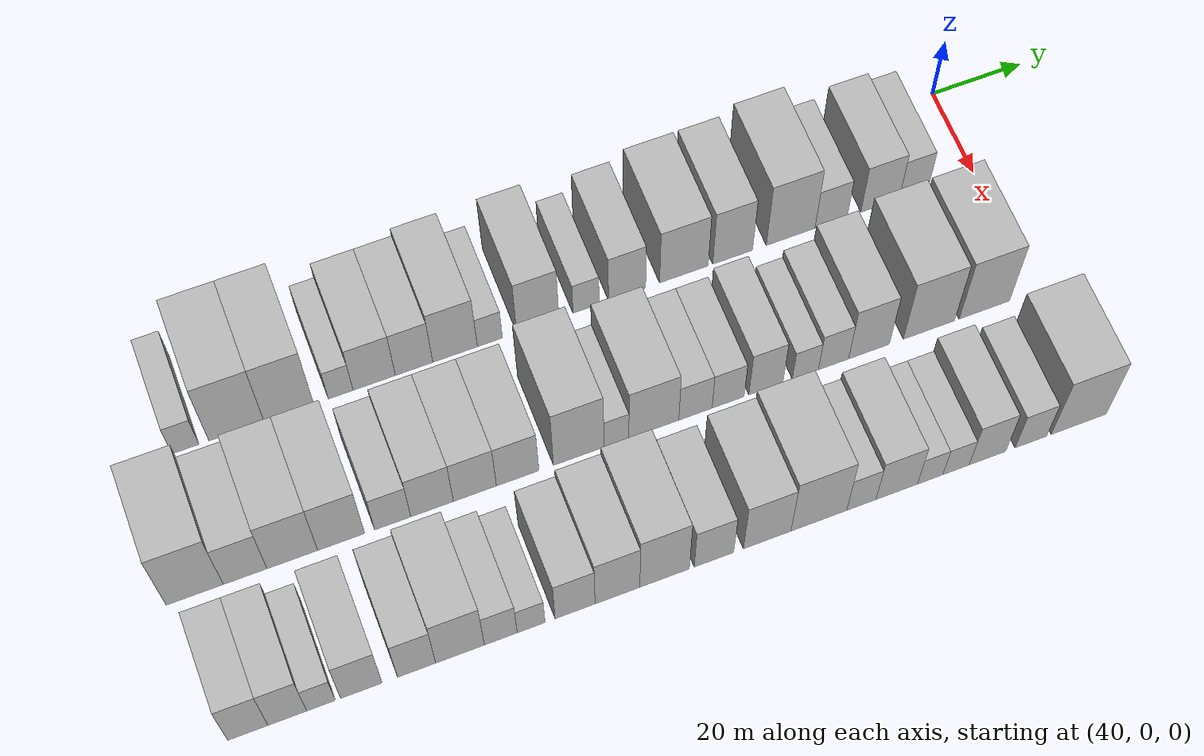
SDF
<sdf version="1.6">
 <world name="default">
  <model name="building_19">
   <static>1</static>
   <pose>50.0000 -167.7257 0 0.000000 0.000000 0.000000</pose>
   <link name="link">
    <pose>0 0 6.00 0 0 0</pose>
    <collision name="collision"><geometry><box><size>20.0000 5.4664 12.0000</size></box></geometry></collision>
    <visual name="visual">
     <cast_shadows>0</cast_shadows>
     <geometry><box><size>20.0000 5.4664 12.0000</size></box></geometry>
     <material>
      <script>
       <uri>model://HANNAS_wall/materials/scripts</uri>
       <uri>model://HANNAS_wall/materials/textures</uri>
       <name>vrc/HANNAS_wall</name>
      </script>
     </material>
    </visual>
   </link>
  </model>
  <model name="building_20">
   <static>1</static>
   <pose>50.0000 -157.3953 0 0.000000 0.000000 0.000000</pose>
   <link name="link">
    <pose>0 0 12.00 0 0 0</pose>
    <collision name="collision"><geometry><box><size>20.0000 11.1945 24.0000</size></box></geometry></collision>
    <visual name="visual">
     <cast_shadows>0</cast_shadows>
     <geometry><box><size>20.0000 11.1945 24.0000</size></box></geometry>
     <material>
      <script>
       <uri>model://HANNAS_wall/materials/scripts</uri>
       <uri>model://HANNAS_wall/materials/textures</uri>
       <name>vrc/HANNAS_wall</name>
      </script>
     </material>
    </visual>
   </link>
  </model>
  <model name="building_21">
   <static>1</static>
   <pose>50.0000 -146.7273 0 0.000000 0.000000 0.000000</pose>
   <link name="link">
    <pose>0 0 12.00 0 0 0</pose>
    <collision name="collision"><geometry><box><size>20.0000 10.1413 24.0000</size></box></geometry></collision>
    <visual name="visual">
     <cast_shadows>0</cast_shadows>
     <geometry><box><size>20.0000 10.1413 24.0000</size></box></geometry>
     <material>
      <script>
       <uri>model://HANNAS_wall/materials/scripts</uri>
       <uri>model://HANNAS_wall/materials/textures</uri>
       <name>vrc/HANNAS_wall</name>
      </script>
     </material>
    </visual>
   </link>
  </model>
  <model name="building_22">
   <static>1</static>
   <pose>50.0000 -136.1086 0 0.000000 0.000000 0.000000</pose>
   <link name="link">
    <pose>0 0 6.00 0 0 0</pose>
    <collision name="collision"><geometry><box><size>20.0000 5.0961 12.0000</size></box></geometry></collision>
    <visual name="visual">
     <cast_shadows>0</cast_shadows>
     <geometry><box><size>20.0000 5.0961 12.0000</size></box></geometry>
     <material>
      <script>
       <uri>model://HANNAS_wall/materials/scripts</uri>
       <uri>model://HANNAS_wall/materials/textures</uri>
       <name>vrc/HANNAS_wall</name>
      </script>
     </material>
    </visual>
   </link>
  </model>
  <model name="building_23">
   <static>1</static>
   <pose>50.0000 -129.1905 0 0.000000 0.000000 0.000000</pose>
   <link name="link">
    <pose>0 0 9.00 0 0 0</pose>
    <collision name="collision"><geometry><box><size>20.0000 8.7401 18.0000</size></box></geometry></collision>
    <visual name="visual">
     <cast_shadows>0</cast_shadows>
     <geometry><box><size>20.0000 8.7401 18.0000</size></box></geometry>
     <material>
      <script>
       <uri>model://HANNAS_wall/materials/scripts</uri>
       <uri>model://HANNAS_wall/materials/textures</uri>
       <name>vrc/HANNAS_wall</name>
      </script>
     </material>
    </visual>
   </link>
  </model>
  <model name="building_24">
   <static>1</static>
   <pose>50.0000 -120.9280 0 0.000000 0.000000 0.000000</pose>
   <link name="link">
    <pose>0 0 9.00 0 0 0</pose>
    <collision name="collision"><geometry><box><size>20.0000 7.7850 18.0000</size></box></geometry></collision>
    <visual name="visual">
     <cast_shadows>0</cast_shadows>
     <geometry><box><size>20.0000 7.7850 18.0000</size></box></geometry>
     <material>
      <script>
       <uri>model://HANNAS_wall/materials/scripts</uri>
       <uri>model://HANNAS_wall/materials/textures</uri>
       <name>vrc/HANNAS_wall</name>
      </script>
     </material>
    </visual>
   </link>
  </model>
  <model name="building_25">
   <static>1</static>
   <pose>50.0000 -112.3726 0 0.000000 0.000000 0.000000</pose>
   <link name="link">
    <pose>0 0 10.50 0 0 0</pose>
    <collision name="collision"><geometry><box><size>20.0000 9.3259 21.0000</size></box></geometry></collision>
    <visual name="visual">
     <cast_shadows>0</cast_shadows>
     <geometry><box><size>20.0000 9.3259 21.0000</size></box></geometry>
     <material>
      <script>
       <uri>model://HANNAS_wall/materials/scripts</uri>
       <uri>model://HANNAS_wall/materials/textures</uri>
       <name>vrc/HANNAS_wall</name>
      </script>
     </material>
    </visual>
   </link>
  </model>
  <model name="building_26">
   <static>1</static>
   <pose>50.0000 -105.0843 0 0.000000 0.000000 0.000000</pose>
   <link name="link">
    <pose>0 0 6.00 0 0 0</pose>
    <collision name="collision"><geometry><box><size>20.0000 5.2507 12.0000</size></box></geometry></collision>
    <visual name="visual">
     <cast_shadows>0</cast_shadows>
     <geometry><box><size>20.0000 5.2507 12.0000</size></box></geometry>
     <material>
      <script>
       <uri>model://HANNAS_wall/materials/scripts</uri>
       <uri>model://HANNAS_wall/materials/textures</uri>
       <name>vrc/HANNAS_wall</name>
      </script>
     </material>
    </visual>
   </link>
  </model>
  <model name="building_27">
   <static>1</static>
   <pose>50.0000 -95.0004 0 0.000000 0.000000 0.000000</pose>
   <link name="link">
    <pose>0 0 10.50 0 0 0</pose>
    <collision name="collision"><geometry><box><size>20.0000 8.9172 21.0000</size></box></geometry></collision>
    <visual name="visual">
     <cast_shadows>0</cast_shadows>
     <geometry><box><size>20.0000 8.9172 21.0000</size></box></geometry>
     <material>
      <script>
       <uri>model://HANNAS_wall/materials/scripts</uri>
       <uri>model://HANNAS_wall/materials/textures</uri>
       <name>vrc/HANNAS_wall</name>
      </script>
     </material>
    </visual>
   </link>
  </model>
  <model name="building_28">
   <static>1</static>
   <pose>50.0000 -84.7550 0 0.000000 0.000000 0.000000</pose>
   <link name="link">
    <pose>0 0 6.00 0 0 0</pose>
    <collision name="collision"><geometry><box><size>20.0000 5.5736 12.0000</size></box></geometry></collision>
    <visual name="visual">
     <cast_shadows>0</cast_shadows>
     <geometry><box><size>20.0000 5.5736 12.0000</size></box></geometry>
     <material>
      <script>
       <uri>model://HANNAS_wall/materials/scripts</uri>
       <uri>model://HANNAS_wall/materials/textures</uri>
       <name>vrc/HANNAS_wall</name>
      </script>
     </material>
    </visual>
   </link>
  </model>
  <model name="building_29">
   <static>1</static>
   <pose>50.0000 -76.0003 0 0.000000 0.000000 0.000000</pose>
   <link name="link">
    <pose>0 0 9.00 0 0 0</pose>
    <collision name="collision"><geometry><box><size>20.0000 7.9358 18.0000</size></box></geometry></collision>
    <visual name="visual">
     <cast_shadows>0</cast_shadows>
     <geometry><box><size>20.0000 7.9358 18.0000</size></box></geometry>
     <material>
      <script>
       <uri>model://HANNAS_wall/materials/scripts</uri>
       <uri>model://HANNAS_wall/materials/textures</uri>
       <name>vrc/HANNAS_wall</name>
      </script>
     </material>
    </visual>
   </link>
  </model>
  <model name="building_30">
   <static>1</static>
   <pose>50.0000 -63.7899 0 0.000000 0.000000 0.000000</pose>
   <link name="link">
    <pose>0 0 10.50 0 0 0</pose>
    <collision name="collision"><geometry><box><size>20.0000 10.4850 21.0000</size></box></geometry></collision>
    <visual name="visual">
     <cast_shadows>0</cast_shadows>
     <geometry><box><size>20.0000 10.4850 21.0000</size></box></geometry>
     <material>
      <script>
       <uri>model://HANNAS_wall/materials/scripts</uri>
       <uri>model://HANNAS_wall/materials/textures</uri>
       <name>vrc/HANNAS_wall</name>
      </script>
     </material>
    </visual>
   </link>
  </model>
  <model name="building_31">
   <static>1</static>
   <pose>50.0000 -53.2239 0 0.000000 0.000000 0.000000</pose>
   <link name="link">
    <pose>0 0 10.50 0 0 0</pose>
    <collision name="collision"><geometry><box><size>20.0000 8.6469 21.0000</size></box></geometry></collision>
    <visual name="visual">
     <cast_shadows>0</cast_shadows>
     <geometry><box><size>20.0000 8.6469 21.0000</size></box></geometry>
     <material>
      <script>
       <uri>model://HANNAS_wall/materials/scripts</uri>
       <uri>model://HANNAS_wall/materials/textures</uri>
       <name>vrc/HANNAS_wall</name>
      </script>
     </material>
    </visual>
   </link>
  </model>
  <model name="building_32">
   <static>1</static>
   <pose>50.0000 -40.5641 0 0.000000 0.000000 0.000000</pose>
   <link name="link">
    <pose>0 0 12.00 0 0 0</pose>
    <collision name="collision"><geometry><box><size>20.0000 10.6726 24.0000</size></box></geometry></collision>
    <visual name="visual">
     <cast_shadows>0</cast_shadows>
     <geometry><box><size>20.0000 10.6726 24.0000</size></box></geometry>
     <material>
      <script>
       <uri>model://HANNAS_wall/materials/scripts</uri>
       <uri>model://HANNAS_wall/materials/textures</uri>
       <name>vrc/HANNAS_wall</name>
      </script>
     </material>
    </visual>
   </link>
  </model>
  <model name="building_33">
   <static>1</static>
   <pose>50.0000 -31.6713 0 0.000000 0.000000 0.000000</pose>
   <link name="link">
    <pose>0 0 7.50 0 0 0</pose>
    <collision name="collision"><geometry><box><size>20.0000 7.1129 15.0000</size></box></geometry></collision>
    <visual name="visual">
     <cast_shadows>0</cast_shadows>
     <geometry><box><size>20.0000 7.1129 15.0000</size></box></geometry>
     <material>
      <script>
       <uri>model://HANNAS_wall/materials/scripts</uri>
       <uri>model://HANNAS_wall/materials/textures</uri>
       <name>vrc/HANNAS_wall</name>
      </script>
     </material>
    </visual>
   </link>
  </model>
  <model name="building_34">
   <static>1</static>
   <pose>50.0000 -20.8521 0 0.000000 0.000000 0.000000</pose>
   <link name="link">
    <pose>0 0 9.00 0 0 0</pose>
    <collision name="collision"><geometry><box><size>20.0000 8.5255 18.0000</size></box></geometry></collision>
    <visual name="visual">
     <cast_shadows>0</cast_shadows>
     <geometry><box><size>20.0000 8.5255 18.0000</size></box></geometry>
     <material>
      <script>
       <uri>model://HANNAS_wall/materials/scripts</uri>
       <uri>model://HANNAS_wall/materials/textures</uri>
       <name>vrc/HANNAS_wall</name>
      </script>
     </material>
    </visual>
   </link>
  </model>
  <model name="building_35">
   <static>1</static>
   <pose>50.0000 -13.3748 0 0.000000 0.000000 0.000000</pose>
   <link name="link">
    <pose>0 0 7.50 0 0 0</pose>
    <collision name="collision"><geometry><box><size>20.0000 6.4291 15.0000</size></box></geometry></collision>
    <visual name="visual">
     <cast_shadows>0</cast_shadows>
     <geometry><box><size>20.0000 6.4291 15.0000</size></box></geometry>
     <material>
      <script>
       <uri>model://HANNAS_wall/materials/scripts</uri>
       <uri>model://HANNAS_wall/materials/textures</uri>
       <name>vrc/HANNAS_wall</name>
      </script>
     </material>
    </visual>
   </link>
  </model>
  <model name="building_93">
   <static>1</static>
   <pose>79.0000 -174.6421 0 0.000000 0.000000 0.000000</pose>
   <link name="link">
    <pose>0 0 12.00 0 0 0</pose>
    <collision name="collision"><geometry><box><size>20.0000 11.1949 24.0000</size></box></geometry></collision>
    <visual name="visual">
     <cast_shadows>0</cast_shadows>
     <geometry><box><size>20.0000 11.1949 24.0000</size></box></geometry>
     <material>
      <script>
       <uri>model://HANNAS_wall/materials/scripts</uri>
       <uri>model://HANNAS_wall/materials/textures</uri>
       <name>vrc/HANNAS_wall</name>
      </script>
     </material>
    </visual>
   </link>
  </model>
  <model name="building_94">
   <static>1</static>
   <pose>79.0000 -164.7249 0 0.000000 0.000000 0.000000</pose>
   <link name="link">
    <pose>0 0 9.00 0 0 0</pose>
    <collision name="collision"><geometry><box><size>20.0000 8.6396 18.0000</size></box></geometry></collision>
    <visual name="visual">
     <cast_shadows>0</cast_shadows>
     <geometry><box><size>20.0000 8.6396 18.0000</size></box></geometry>
     <material>
      <script>
       <uri>model://HANNAS_wall/materials/scripts</uri>
       <uri>model://HANNAS_wall/materials/textures</uri>
       <name>vrc/HANNAS_wall</name>
      </script>
     </material>
    </visual>
   </link>
  </model>
  <model name="building_95">
   <static>1</static>
   <pose>79.0000 -155.3647 0 0.000000 0.000000 0.000000</pose>
   <link name="link">
    <pose>0 0 10.50 0 0 0</pose>
    <collision name="collision"><geometry><box><size>20.0000 10.0809 21.0000</size></box></geometry></collision>
    <visual name="visual">
     <cast_shadows>0</cast_shadows>
     <geometry><box><size>20.0000 10.0809 21.0000</size></box></geometry>
     <material>
      <script>
       <uri>model://HANNAS_wall/materials/scripts</uri>
       <uri>model://HANNAS_wall/materials/textures</uri>
       <name>vrc/HANNAS_wall</name>
      </script>
     </material>
    </visual>
   </link>
  </model>
  <model name="building_96">
   <static>1</static>
   <pose>79.0000 -145.6294 0 0.000000 0.000000 0.000000</pose>
   <link name="link">
    <pose>0 0 10.50 0 0 0</pose>
    <collision name="collision"><geometry><box><size>20.0000 9.3896 21.0000</size></box></geometry></collision>
    <visual name="visual">
     <cast_shadows>0</cast_shadows>
     <geometry><box><size>20.0000 9.3896 21.0000</size></box></geometry>
     <material>
      <script>
       <uri>model://HANNAS_wall/materials/scripts</uri>
       <uri>model://HANNAS_wall/materials/textures</uri>
       <name>vrc/HANNAS_wall</name>
      </script>
     </material>
    </visual>
   </link>
  </model>
  <model name="building_97">
   <static>1</static>
   <pose>79.0000 -135.2980 0 0.000000 0.000000 0.000000</pose>
   <link name="link">
    <pose>0 0 7.50 0 0 0</pose>
    <collision name="collision"><geometry><box><size>20.0000 7.2731 15.0000</size></box></geometry></collision>
    <visual name="visual">
     <cast_shadows>0</cast_shadows>
     <geometry><box><size>20.0000 7.2731 15.0000</size></box></geometry>
     <material>
      <script>
       <uri>model://HANNAS_wall/materials/scripts</uri>
       <uri>model://HANNAS_wall/materials/textures</uri>
       <name>vrc/HANNAS_wall</name>
      </script>
     </material>
    </visual>
   </link>
  </model>
  <model name="building_98">
   <static>1</static>
   <pose>79.0000 -127.3431 0 0.000000 0.000000 0.000000</pose>
   <link name="link">
    <pose>0 0 9.00 0 0 0</pose>
    <collision name="collision"><geometry><box><size>20.0000 8.6368 18.0000</size></box></geometry></collision>
    <visual name="visual">
     <cast_shadows>0</cast_shadows>
     <geometry><box><size>20.0000 8.6368 18.0000</size></box></geometry>
     <material>
      <script>
       <uri>model://HANNAS_wall/materials/scripts</uri>
       <uri>model://HANNAS_wall/materials/textures</uri>
       <name>vrc/HANNAS_wall</name>
      </script>
     </material>
    </visual>
   </link>
  </model>
  <model name="building_99">
   <static>1</static>
   <pose>79.0000 -118.6363 0 0.000000 0.000000 0.000000</pose>
   <link name="link">
    <pose>0 0 9.00 0 0 0</pose>
    <collision name="collision"><geometry><box><size>20.0000 8.7768 18.0000</size></box></geometry></collision>
    <visual name="visual">
     <cast_shadows>0</cast_shadows>
     <geometry><box><size>20.0000 8.7768 18.0000</size></box></geometry>
     <material>
      <script>
       <uri>model://HANNAS_wall/materials/scripts</uri>
       <uri>model://HANNAS_wall/materials/textures</uri>
       <name>vrc/HANNAS_wall</name>
      </script>
     </material>
    </visual>
   </link>
  </model>
  <model name="building_100">
   <static>1</static>
   <pose>79.0000 -109.9008 0 0.000000 0.000000 0.000000</pose>
   <link name="link">
    <pose>0 0 9.00 0 0 0</pose>
    <collision name="collision"><geometry><box><size>20.0000 8.6943 18.0000</size></box></geometry></collision>
    <visual name="visual">
     <cast_shadows>0</cast_shadows>
     <geometry><box><size>20.0000 8.6943 18.0000</size></box></geometry>
     <material>
      <script>
       <uri>model://HANNAS_wall/materials/scripts</uri>
       <uri>model://HANNAS_wall/materials/textures</uri>
       <name>vrc/HANNAS_wall</name>
      </script>
     </material>
    </visual>
   </link>
  </model>
  <model name="building_101">
   <static>1</static>
   <pose>79.0000 -97.3235 0 0.000000 0.000000 0.000000</pose>
   <link name="link">
    <pose>0 0 12.00 0 0 0</pose>
    <collision name="collision"><geometry><box><size>20.0000 10.4603 24.0000</size></box></geometry></collision>
    <visual name="visual">
     <cast_shadows>0</cast_shadows>
     <geometry><box><size>20.0000 10.4603 24.0000</size></box></geometry>
     <material>
      <script>
       <uri>model://HANNAS_wall/materials/scripts</uri>
       <uri>model://HANNAS_wall/materials/textures</uri>
       <name>vrc/HANNAS_wall</name>
      </script>
     </material>
    </visual>
   </link>
  </model>
  <model name="building_102">
   <static>1</static>
   <pose>79.0000 -89.5181 0 0.000000 0.000000 0.000000</pose>
   <link name="link">
    <pose>0 0 6.00 0 0 0</pose>
    <collision name="collision"><geometry><box><size>20.0000 5.1506 12.0000</size></box></geometry></collision>
    <visual name="visual">
     <cast_shadows>0</cast_shadows>
     <geometry><box><size>20.0000 5.1506 12.0000</size></box></geometry>
     <material>
      <script>
       <uri>model://HANNAS_wall/materials/scripts</uri>
       <uri>model://HANNAS_wall/materials/textures</uri>
       <name>vrc/HANNAS_wall</name>
      </script>
     </material>
    </visual>
   </link>
  </model>
  <model name="building_103">
   <static>1</static>
   <pose>79.0000 -81.7245 0 0.000000 0.000000 0.000000</pose>
   <link name="link">
    <pose>0 0 10.50 0 0 0</pose>
    <collision name="collision"><geometry><box><size>20.0000 10.4366 21.0000</size></box></geometry></collision>
    <visual name="visual">
     <cast_shadows>0</cast_shadows>
     <geometry><box><size>20.0000 10.4366 21.0000</size></box></geometry>
     <material>
      <script>
       <uri>model://HANNAS_wall/materials/scripts</uri>
       <uri>model://HANNAS_wall/materials/textures</uri>
       <name>vrc/HANNAS_wall</name>
      </script>
     </material>
    </visual>
   </link>
  </model>
  <model name="building_104">
   <static>1</static>
   <pose>79.0000 -73.0098 0 0.000000 0.000000 0.000000</pose>
   <link name="link">
    <pose>0 0 7.50 0 0 0</pose>
    <collision name="collision"><geometry><box><size>20.0000 6.9927 15.0000</size></box></geometry></collision>
    <visual name="visual">
     <cast_shadows>0</cast_shadows>
     <geometry><box><size>20.0000 6.9927 15.0000</size></box></geometry>
     <material>
      <script>
       <uri>model://HANNAS_wall/materials/scripts</uri>
       <uri>model://HANNAS_wall/materials/textures</uri>
       <name>vrc/HANNAS_wall</name>
      </script>
     </material>
    </visual>
   </link>
  </model>
  <model name="building_105">
   <static>1</static>
   <pose>79.0000 -66.1398 0 0.000000 0.000000 0.000000</pose>
   <link name="link">
    <pose>0 0 7.50 0 0 0</pose>
    <collision name="collision"><geometry><box><size>20.0000 6.7475 15.0000</size></box></geometry></collision>
    <visual name="visual">
     <cast_shadows>0</cast_shadows>
     <geometry><box><size>20.0000 6.7475 15.0000</size></box></geometry>
     <material>
      <script>
       <uri>model://HANNAS_wall/materials/scripts</uri>
       <uri>model://HANNAS_wall/materials/textures</uri>
       <name>vrc/HANNAS_wall</name>
      </script>
     </material>
    </visual>
   </link>
  </model>
  <model name="building_106">
   <static>1</static>
   <pose>79.0000 -58.1463 0 0.000000 0.000000 0.000000</pose>
   <link name="link">
    <pose>0 0 9.00 0 0 0</pose>
    <collision name="collision"><geometry><box><size>20.0000 7.2394 18.0000</size></box></geometry></collision>
    <visual name="visual">
     <cast_shadows>0</cast_shadows>
     <geometry><box><size>20.0000 7.2394 18.0000</size></box></geometry>
     <material>
      <script>
       <uri>model://HANNAS_wall/materials/scripts</uri>
       <uri>model://HANNAS_wall/materials/textures</uri>
       <name>vrc/HANNAS_wall</name>
      </script>
     </material>
    </visual>
   </link>
  </model>
  <model name="building_107">
   <static>1</static>
   <pose>79.0000 -49.7408 0 0.000000 0.000000 0.000000</pose>
   <link name="link">
    <pose>0 0 6.00 0 0 0</pose>
    <collision name="collision"><geometry><box><size>20.0000 5.5715 12.0000</size></box></geometry></collision>
    <visual name="visual">
     <cast_shadows>0</cast_shadows>
     <geometry><box><size>20.0000 5.5715 12.0000</size></box></geometry>
     <material>
      <script>
       <uri>model://HANNAS_wall/materials/scripts</uri>
       <uri>model://HANNAS_wall/materials/textures</uri>
       <name>vrc/HANNAS_wall</name>
      </script>
     </material>
    </visual>
   </link>
  </model>
  <model name="building_108">
   <static>1</static>
   <pose>79.0000 -43.7223 0 0.000000 0.000000 0.000000</pose>
   <link name="link">
    <pose>0 0 7.50 0 0 0</pose>
    <collision name="collision"><geometry><box><size>20.0000 6.4656 15.0000</size></box></geometry></collision>
    <visual name="visual">
     <cast_shadows>0</cast_shadows>
     <geometry><box><size>20.0000 6.4656 15.0000</size></box></geometry>
     <material>
      <script>
       <uri>model://HANNAS_wall/materials/scripts</uri>
       <uri>model://HANNAS_wall/materials/textures</uri>
       <name>vrc/HANNAS_wall</name>
      </script>
     </material>
    </visual>
   </link>
  </model>
  <model name="building_109">
   <static>1</static>
   <pose>79.0000 -36.0960 0 0.000000 0.000000 0.000000</pose>
   <link name="link">
    <pose>0 0 10.50 0 0 0</pose>
    <collision name="collision"><geometry><box><size>20.0000 8.7871 21.0000</size></box></geometry></collision>
    <visual name="visual">
     <cast_shadows>0</cast_shadows>
     <geometry><box><size>20.0000 8.7871 21.0000</size></box></geometry>
     <material>
      <script>
       <uri>model://HANNAS_wall/materials/scripts</uri>
       <uri>model://HANNAS_wall/materials/textures</uri>
       <name>vrc/HANNAS_wall</name>
      </script>
     </material>
    </visual>
   </link>
  </model>
  <model name="building_110">
   <static>1</static>
   <pose>79.0000 -23.1301 0 0.000000 0.000000 0.000000</pose>
   <link name="link">
    <pose>0 0 12.00 0 0 0</pose>
    <collision name="collision"><geometry><box><size>20.0000 11.1446 24.0000</size></box></geometry></collision>
    <visual name="visual">
     <cast_shadows>0</cast_shadows>
     <geometry><box><size>20.0000 11.1446 24.0000</size></box></geometry>
     <material>
      <script>
       <uri>model://HANNAS_wall/materials/scripts</uri>
       <uri>model://HANNAS_wall/materials/textures</uri>
       <name>vrc/HANNAS_wall</name>
      </script>
     </material>
    </visual>
   </link>
  </model>
  <model name="building_111">
   <static>1</static>
   <pose>79.0000 -11.0410 0 0.000000 0.000000 0.000000</pose>
   <link name="link">
    <pose>0 0 12.00 0 0 0</pose>
    <collision name="collision"><geometry><box><size>20.0000 11.0335 24.0000</size></box></geometry></collision>
    <visual name="visual">
     <cast_shadows>0</cast_shadows>
     <geometry><box><size>20.0000 11.0335 24.0000</size></box></geometry>
     <material>
      <script>
       <uri>model://HANNAS_wall/materials/scripts</uri>
       <uri>model://HANNAS_wall/materials/textures</uri>
       <name>vrc/HANNAS_wall</name>
      </script>
     </material>
    </visual>
   </link>
  </model>
  <model name="building_169">
   <static>1</static>
   <pose>108.0000 -173.2814 0 0.000000 0.000000 0.000000</pose>
   <link name="link">
    <pose>0 0 9.00 0 0 0</pose>
    <collision name="collision"><geometry><box><size>20.0000 7.7105 18.0000</size></box></geometry></collision>
    <visual name="visual">
     <cast_shadows>0</cast_shadows>
     <geometry><box><size>20.0000 7.7105 18.0000</size></box></geometry>
     <material>
      <script>
       <uri>model://HANNAS_wall/materials/scripts</uri>
       <uri>model://HANNAS_wall/materials/textures</uri>
       <name>vrc/HANNAS_wall</name>
      </script>
     </material>
    </visual>
   </link>
  </model>
  <model name="building_170">
   <static>1</static>
   <pose>108.0000 -165.6960 0 0.000000 0.000000 0.000000</pose>
   <link name="link">
    <pose>0 0 9.00 0 0 0</pose>
    <collision name="collision"><geometry><box><size>20.0000 7.4602 18.0000</size></box></geometry></collision>
    <visual name="visual">
     <cast_shadows>0</cast_shadows>
     <geometry><box><size>20.0000 7.4602 18.0000</size></box></geometry>
     <material>
      <script>
       <uri>model://HANNAS_wall/materials/scripts</uri>
       <uri>model://HANNAS_wall/materials/textures</uri>
       <name>vrc/HANNAS_wall</name>
      </script>
     </material>
    </visual>
   </link>
  </model>
  <model name="building_171">
   <static>1</static>
   <pose>108.0000 -159.1770 0 0.000000 0.000000 0.000000</pose>
   <link name="link">
    <pose>0 0 6.00 0 0 0</pose>
    <collision name="collision"><geometry><box><size>20.0000 5.5778 12.0000</size></box></geometry></collision>
    <visual name="visual">
     <cast_shadows>0</cast_shadows>
     <geometry><box><size>20.0000 5.5778 12.0000</size></box></geometry>
     <material>
      <script>
       <uri>model://HANNAS_wall/materials/scripts</uri>
       <uri>model://HANNAS_wall/materials/textures</uri>
       <name>vrc/HANNAS_wall</name>
      </script>
     </material>
    </visual>
   </link>
  </model>
  <model name="building_172">
   <static>1</static>
   <pose>108.0000 -151.3363 0 0.000000 0.000000 0.000000</pose>
   <link name="link">
    <pose>0 0 9.00 0 0 0</pose>
    <collision name="collision"><geometry><box><size>20.0000 8.1036 18.0000</size></box></geometry></collision>
    <visual name="visual">
     <cast_shadows>0</cast_shadows>
     <geometry><box><size>20.0000 8.1036 18.0000</size></box></geometry>
     <material>
      <script>
       <uri>model://HANNAS_wall/materials/scripts</uri>
       <uri>model://HANNAS_wall/materials/textures</uri>
       <name>vrc/HANNAS_wall</name>
      </script>
     </material>
    </visual>
   </link>
  </model>
  <model name="building_173">
   <static>1</static>
   <pose>108.0000 -140.5431 0 0.000000 0.000000 0.000000</pose>
   <link name="link">
    <pose>0 0 9.00 0 0 0</pose>
    <collision name="collision"><geometry><box><size>20.0000 7.4827 18.0000</size></box></geometry></collision>
    <visual name="visual">
     <cast_shadows>0</cast_shadows>
     <geometry><box><size>20.0000 7.4827 18.0000</size></box></geometry>
     <material>
      <script>
       <uri>model://HANNAS_wall/materials/scripts</uri>
       <uri>model://HANNAS_wall/materials/textures</uri>
       <name>vrc/HANNAS_wall</name>
      </script>
     </material>
    </visual>
   </link>
  </model>
  <model name="building_174">
   <static>1</static>
   <pose>108.0000 -131.9885 0 0.000000 0.000000 0.000000</pose>
   <link name="link">
    <pose>0 0 10.50 0 0 0</pose>
    <collision name="collision"><geometry><box><size>20.0000 9.6266 21.0000</size></box></geometry></collision>
    <visual name="visual">
     <cast_shadows>0</cast_shadows>
     <geometry><box><size>20.0000 9.6266 21.0000</size></box></geometry>
     <material>
      <script>
       <uri>model://HANNAS_wall/materials/scripts</uri>
       <uri>model://HANNAS_wall/materials/textures</uri>
       <name>vrc/HANNAS_wall</name>
      </script>
     </material>
    </visual>
   </link>
  </model>
  <model name="building_175">
   <static>1</static>
   <pose>108.0000 -123.9143 0 0.000000 0.000000 0.000000</pose>
   <link name="link">
    <pose>0 0 7.50 0 0 0</pose>
    <collision name="collision"><geometry><box><size>20.0000 6.5218 15.0000</size></box></geometry></collision>
    <visual name="visual">
     <cast_shadows>0</cast_shadows>
     <geometry><box><size>20.0000 6.5218 15.0000</size></box></geometry>
     <material>
      <script>
       <uri>model://HANNAS_wall/materials/scripts</uri>
       <uri>model://HANNAS_wall/materials/textures</uri>
       <name>vrc/HANNAS_wall</name>
      </script>
     </material>
    </visual>
   </link>
  </model>
  <model name="building_176">
   <static>1</static>
   <pose>108.0000 -117.8788 0 0.000000 0.000000 0.000000</pose>
   <link name="link">
    <pose>0 0 6.00 0 0 0</pose>
    <collision name="collision"><geometry><box><size>20.0000 5.5492 12.0000</size></box></geometry></collision>
    <visual name="visual">
     <cast_shadows>0</cast_shadows>
     <geometry><box><size>20.0000 5.5492 12.0000</size></box></geometry>
     <material>
      <script>
       <uri>model://HANNAS_wall/materials/scripts</uri>
       <uri>model://HANNAS_wall/materials/textures</uri>
       <name>vrc/HANNAS_wall</name>
      </script>
     </material>
    </visual>
   </link>
  </model>
  <model name="building_177">
   <static>1</static>
   <pose>108.0000 -109.0860 0 0.000000 0.000000 0.000000</pose>
   <link name="link">
    <pose>0 0 9.00 0 0 0</pose>
    <collision name="collision"><geometry><box><size>20.0000 8.0364 18.0000</size></box></geometry></collision>
    <visual name="visual">
     <cast_shadows>0</cast_shadows>
     <geometry><box><size>20.0000 8.0364 18.0000</size></box></geometry>
     <material>
      <script>
       <uri>model://HANNAS_wall/materials/scripts</uri>
       <uri>model://HANNAS_wall/materials/textures</uri>
       <name>vrc/HANNAS_wall</name>
      </script>
     </material>
    </visual>
   </link>
  </model>
  <model name="building_178">
   <static>1</static>
   <pose>108.0000 -100.5603 0 0.000000 0.000000 0.000000</pose>
   <link name="link">
    <pose>0 0 10.50 0 0 0</pose>
    <collision name="collision"><geometry><box><size>20.0000 9.0152 21.0000</size></box></geometry></collision>
    <visual name="visual">
     <cast_shadows>0</cast_shadows>
     <geometry><box><size>20.0000 9.0152 21.0000</size></box></geometry>
     <material>
      <script>
       <uri>model://HANNAS_wall/materials/scripts</uri>
       <uri>model://HANNAS_wall/materials/textures</uri>
       <name>vrc/HANNAS_wall</name>
      </script>
     </material>
    </visual>
   </link>
  </model>
  <model name="building_179">
   <static>1</static>
   <pose>108.0000 -91.0299 0 0.000000 0.000000 0.000000</pose>
   <link name="link">
    <pose>0 0 12.00 0 0 0</pose>
    <collision name="collision"><geometry><box><size>20.0000 10.0457 24.0000</size></box></geometry></collision>
    <visual name="visual">
     <cast_shadows>0</cast_shadows>
     <geometry><box><size>20.0000 10.0457 24.0000</size></box></geometry>
     <material>
      <script>
       <uri>model://HANNAS_wall/materials/scripts</uri>
       <uri>model://HANNAS_wall/materials/textures</uri>
       <name>vrc/HANNAS_wall</name>
      </script>
     </material>
    </visual>
   </link>
  </model>
  <model name="building_180">
   <static>1</static>
   <pose>108.0000 -80.9696 0 0.000000 0.000000 0.000000</pose>
   <link name="link">
    <pose>0 0 9.00 0 0 0</pose>
    <collision name="collision"><geometry><box><size>20.0000 8.0749 18.0000</size></box></geometry></collision>
    <visual name="visual">
     <cast_shadows>0</cast_shadows>
     <geometry><box><size>20.0000 8.0749 18.0000</size></box></geometry>
     <material>
      <script>
       <uri>model://HANNAS_wall/materials/scripts</uri>
       <uri>model://HANNAS_wall/materials/textures</uri>
       <name>vrc/HANNAS_wall</name>
      </script>
     </material>
    </visual>
   </link>
  </model>
  <model name="building_181">
   <static>1</static>
   <pose>108.0000 -70.0356 0 0.000000 0.000000 0.000000</pose>
   <link name="link">
    <pose>0 0 10.50 0 0 0</pose>
    <collision name="collision"><geometry><box><size>20.0000 9.7931 21.0000</size></box></geometry></collision>
    <visual name="visual">
     <cast_shadows>0</cast_shadows>
     <geometry><box><size>20.0000 9.7931 21.0000</size></box></geometry>
     <material>
      <script>
       <uri>model://HANNAS_wall/materials/scripts</uri>
       <uri>model://HANNAS_wall/materials/textures</uri>
       <name>vrc/HANNAS_wall</name>
      </script>
     </material>
    </visual>
   </link>
  </model>
  <model name="building_182">
   <static>1</static>
   <pose>108.0000 -59.3357 0 0.000000 0.000000 0.000000</pose>
   <link name="link">
    <pose>0 0 12.00 0 0 0</pose>
    <collision name="collision"><geometry><box><size>20.0000 11.6067 24.0000</size></box></geometry></collision>
    <visual name="visual">
     <cast_shadows>0</cast_shadows>
     <geometry><box><size>20.0000 11.6067 24.0000</size></box></geometry>
     <material>
      <script>
       <uri>model://HANNAS_wall/materials/scripts</uri>
       <uri>model://HANNAS_wall/materials/textures</uri>
       <name>vrc/HANNAS_wall</name>
      </script>
     </material>
    </visual>
   </link>
  </model>
  <model name="building_183">
   <static>1</static>
   <pose>108.0000 -50.4941 0 0.000000 0.000000 0.000000</pose>
   <link name="link">
    <pose>0 0 7.50 0 0 0</pose>
    <collision name="collision"><geometry><box><size>20.0000 6.0766 15.0000</size></box></geometry></collision>
    <visual name="visual">
     <cast_shadows>0</cast_shadows>
     <geometry><box><size>20.0000 6.0766 15.0000</size></box></geometry>
     <material>
      <script>
       <uri>model://HANNAS_wall/materials/scripts</uri>
       <uri>model://HANNAS_wall/materials/textures</uri>
       <name>vrc/HANNAS_wall</name>
      </script>
     </material>
    </visual>
   </link>
  </model>
  <model name="building_184">
   <static>1</static>
   <pose>108.0000 -43.0907 0 0.000000 0.000000 0.000000</pose>
   <link name="link">
    <pose>0 0 9.00 0 0 0</pose>
    <collision name="collision"><geometry><box><size>20.0000 8.7302 18.0000</size></box></geometry></collision>
    <visual name="visual">
     <cast_shadows>0</cast_shadows>
     <geometry><box><size>20.0000 8.7302 18.0000</size></box></geometry>
     <material>
      <script>
       <uri>model://HANNAS_wall/materials/scripts</uri>
       <uri>model://HANNAS_wall/materials/textures</uri>
       <name>vrc/HANNAS_wall</name>
      </script>
     </material>
    </visual>
   </link>
  </model>
  <model name="building_185">
   <static>1</static>
   <pose>108.0000 -36.0420 0 0.000000 0.000000 0.000000</pose>
   <link name="link">
    <pose>0 0 6.00 0 0 0</pose>
    <collision name="collision"><geometry><box><size>20.0000 5.3672 12.0000</size></box></geometry></collision>
    <visual name="visual">
     <cast_shadows>0</cast_shadows>
     <geometry><box><size>20.0000 5.3672 12.0000</size></box></geometry>
     <material>
      <script>
       <uri>model://HANNAS_wall/materials/scripts</uri>
       <uri>model://HANNAS_wall/materials/textures</uri>
       <name>vrc/HANNAS_wall</name>
      </script>
     </material>
    </visual>
   </link>
  </model>
  <model name="building_186">
   <static>1</static>
   <pose>108.0000 -30.5812 0 0.000000 0.000000 0.000000</pose>
   <link name="link">
    <pose>0 0 6.00 0 0 0</pose>
    <collision name="collision"><geometry><box><size>20.0000 5.5544 12.0000</size></box></geometry></collision>
    <visual name="visual">
     <cast_shadows>0</cast_shadows>
     <geometry><box><size>20.0000 5.5544 12.0000</size></box></geometry>
     <material>
      <script>
       <uri>model://HANNAS_wall/materials/scripts</uri>
       <uri>model://HANNAS_wall/materials/textures</uri>
       <name>vrc/HANNAS_wall</name>
      </script>
     </material>
    </visual>
   </link>
  </model>
  <model name="building_187">
   <static>1</static>
   <pose>108.0000 -23.9110 0 0.000000 0.000000 0.000000</pose>
   <link name="link">
    <pose>0 0 9.00 0 0 0</pose>
    <collision name="collision"><geometry><box><size>20.0000 7.7859 18.0000</size></box></geometry></collision>
    <visual name="visual">
     <cast_shadows>0</cast_shadows>
     <geometry><box><size>20.0000 7.7859 18.0000</size></box></geometry>
     <material>
      <script>
       <uri>model://HANNAS_wall/materials/scripts</uri>
       <uri>model://HANNAS_wall/materials/textures</uri>
       <name>vrc/HANNAS_wall</name>
      </script>
     </material>
    </visual>
   </link>
  </model>
  <model name="building_188">
   <static>1</static>
   <pose>108.0000 -14.6415 0 0.000000 0.000000 0.000000</pose>
   <link name="link">
    <pose>0 0 7.50 0 0 0</pose>
    <collision name="collision"><geometry><box><size>20.0000 6.7532 15.0000</size></box></geometry></collision>
    <visual name="visual">
     <cast_shadows>0</cast_shadows>
     <geometry><box><size>20.0000 6.7532 15.0000</size></box></geometry>
     <material>
      <script>
       <uri>model://HANNAS_wall/materials/scripts</uri>
       <uri>model://HANNAS_wall/materials/textures</uri>
       <name>vrc/HANNAS_wall</name>
      </script>
     </material>
    </visual>
   </link>
  </model>
  <model name="building_189">
   <static>1</static>
   <pose>108.0000 -4.3661 0 0.000000 0.000000 0.000000</pose>
   <link name="link">
    <pose>0 0 12.00 0 0 0</pose>
    <collision name="collision"><geometry><box><size>20.0000 11.7976 24.0000</size></box></geometry></collision>
    <visual name="visual">
     <cast_shadows>0</cast_shadows>
     <geometry><box><size>20.0000 11.7976 24.0000</size></box></geometry>
     <material>
      <script>
       <uri>model://HANNAS_wall/materials/scripts</uri>
       <uri>model://HANNAS_wall/materials/textures</uri>
       <name>vrc/HANNAS_wall</name>
      </script>
     </material>
    </visual>
   </link>
  </model>
 </world>
</sdf>
